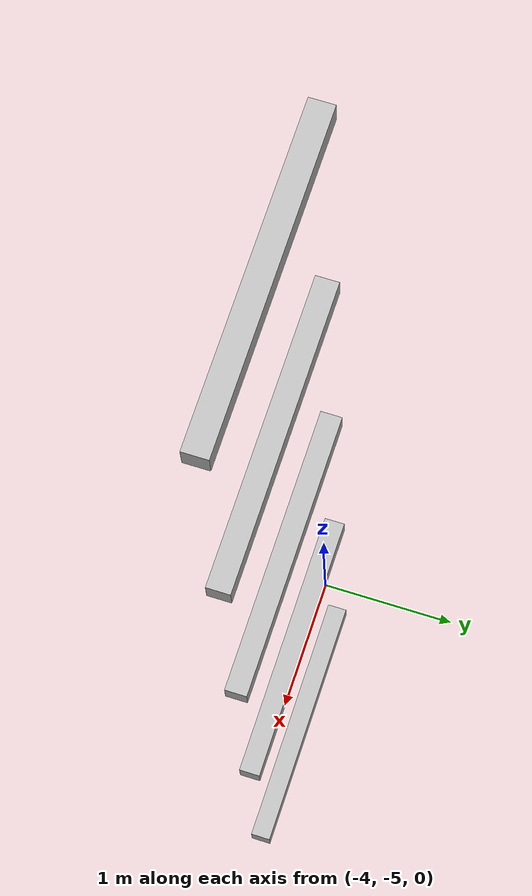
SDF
<sdf version="1.7">
 <world name="default">
  <model name="orthogonal_747_2.000.15_TS">
   <static>1</static>
   <link name="x_link_0_0_1">
    <inertial>
     <mass>1</mass>
     <inertia>
      <ixx>0.166667</ixx>
      <ixy>0</ixy>
      <ixz>0</ixz>
      <iyy>0.166667</iyy>
      <iyz>0</iyz>
      <izz>0.166667</izz>
     </inertia>
    </inertial>
    <pose>3.225 0 1.075 0 -0 0</pose>
    <visual name="visual_0">
     <laser_retro>22</laser_retro>
     <geometry><box><size>2 1e-06 0.15</size></box></geometry>
     <material>
      <script><name>Gazebo/Grey</name><uri>file://media/materials/scripts/gazebo.material</uri></script>
      <shader type="pixel"><normal_map>__default__</normal_map></shader>
      <ambient>0.678 0.498 0.659 1</ambient>
      <diffuse>0.7 0.7 0.7 1</diffuse>
      <specular>0.01 0.01 0.01 1</specular>
      <emissive>0 0 0 1</emissive>
     </material>
     <pose>0 -0.075 0 0 -0 0</pose>
     <transparency>1</transparency>
    </visual>
    <visual name="visual_1">
     <laser_retro>23</laser_retro>
     <geometry><box><size>2 1e-06 0.15</size></box></geometry>
     <material>
      <script><name>Gazebo/Grey</name><uri>file://media/materials/scripts/gazebo.material</uri></script>
      <shader type="pixel"><normal_map>__default__</normal_map></shader>
      <ambient>0.447 0.624 0.812 1</ambient>
      <diffuse>0.7 0.7 0.7 1</diffuse>
      <specular>0.01 0.01 0.01 1</specular>
      <emissive>0 0 0 1</emissive>
     </material>
     <pose>0 0.075 0 0 -0 0</pose>
     <transparency>1</transparency>
    </visual>
    <visual name="visual_2">
     <laser_retro>24</laser_retro>
     <geometry><box><size>2 0.15 1e-06</size></box></geometry>
     <material>
      <script><name>Gazebo/Grey</name><uri>file://media/materials/scripts/gazebo.material</uri></script>
      <shader type="pixel"><normal_map>__default__</normal_map></shader>
      <ambient>0.988 0.686 0.243 1</ambient>
      <diffuse>0.7 0.7 0.7 1</diffuse>
      <specular>0.01 0.01 0.01 1</specular>
      <emissive>0 0 0 1</emissive>
     </material>
     <pose>0 0 -0.075 0 -0 0</pose>
     <transparency>1</transparency>
    </visual>
    <visual name="visual_3">
     <laser_retro>25</laser_retro>
     <geometry><box><size>1e-06 0.15 0.15</size></box></geometry>
     <material>
      <script><name>Gazebo/Grey</name><uri>file://media/materials/scripts/gazebo.material</uri></script>
      <shader type="pixel"><normal_map>__default__</normal_map></shader>
      <ambient>0.988 0.914 0.31 1</ambient>
      <diffuse>0.7 0.7 0.7 1</diffuse>
      <specular>0.01 0.01 0.01 1</specular>
      <emissive>0 0 0 1</emissive>
     </material>
     <pose>1 0 0 0 -0 0</pose>
     <transparency>1</transparency>
    </visual>
    <visual name="visual_4">
     <laser_retro>26</laser_retro>
     <geometry><box><size>2 0.15 1e-06</size></box></geometry>
     <material>
      <script><name>Gazebo/Grey</name><uri>file://media/materials/scripts/gazebo.material</uri></script>
      <shader type="pixel"><normal_map>__default__</normal_map></shader>
      <ambient>0.937 0.161 0.161 1</ambient>
      <diffuse>0.7 0.7 0.7 1</diffuse>
      <specular>0.01 0.01 0.01 1</specular>
      <emissive>0 0 0 1</emissive>
     </material>
     <pose>0 0 0.075 0 -0 0</pose>
     <transparency>1</transparency>
    </visual>
    <visual name="visual_5">
     <laser_retro>27</laser_retro>
     <geometry><box><size>1e-06 0.15 0.15</size></box></geometry>
     <material>
      <script><name>Gazebo/Grey</name><uri>file://media/materials/scripts/gazebo.material</uri></script>
      <shader type="pixel"><normal_map>__default__</normal_map></shader>
      <ambient>0.541 0.886 0.204 1</ambient>
      <diffuse>0.7 0.7 0.7 1</diffuse>
      <specular>0.01 0.01 0.01 1</specular>
      <emissive>0 0 0 1</emissive>
     </material>
     <pose>-1 0 0 0 -0 0</pose>
     <transparency>1</transparency>
    </visual>
    <visual name="visual_texture">
     <geometry><box><size>1.9998 0.149985 0.149985</size></box></geometry>
     <material>
      <script>
       <uri>model://BASE_MODELS/simple_block_v2_textured/materials/scripts</uri>
       <uri>model://BASE_MODELS/simple_block_v2_textured/materials/textures</uri>
       <name>metal</name>
      </script>
     </material>
     <laser_retro>28</laser_retro>
    </visual>
    <collision name="collision">
     <geometry><box><size>2 0.15 0.15</size></box></geometry>
     <surface>
      <friction>
       <ode><mu>1</mu><mu2>1</mu2><fdir1>0 0 0</fdir1><slip1>0</slip1><slip2>0</slip2></ode>
       <torsional>
        <coefficient>1</coefficient>
        <patch_radius>0</patch_radius>
        <surface_radius>0</surface_radius>
        <use_patch_radius>1</use_patch_radius>
        <ode><slip>0</slip></ode>
       </torsional>
      </friction>
      <bounce><restitution_coefficient>0</restitution_coefficient><threshold>1e+06</threshold></bounce>
      <contact>
       <collide_without_contact>0</collide_without_contact>
       <collide_without_contact_bitmask>1</collide_without_contact_bitmask>
       <collide_bitmask>1</collide_bitmask>
       <ode>
        <soft_cfm>0</soft_cfm>
        <soft_erp>0.2</soft_erp>
        <kp>1e+13</kp>
        <kd>1</kd>
        <max_vel>0.01</max_vel>
        <min_depth>0</min_depth>
       </ode>
       <bullet>
        <split_impulse>1</split_impulse>
        <split_impulse_penetration_threshold>-0.01</split_impulse_penetration_threshold>
        <soft_cfm>0</soft_cfm>
        <soft_erp>0.2</soft_erp>
        <kp>1e+13</kp>
        <kd>1</kd>
       </bullet>
      </contact>
     </surface>
    </collision>
   </link>
   <link name="x_link_1_0_1">
    <inertial>
     <mass>1</mass>
     <inertia>
      <ixx>0.166667</ixx>
      <ixy>0</ixy>
      <ixz>0</ixz>
      <iyy>0.166667</iyy>
      <iyz>0</iyz>
      <izz>0.166667</izz>
     </inertia>
    </inertial>
    <pose>3.225 0 3.225 0 -0 0</pose>
    <visual name="visual_0">
     <laser_retro>778</laser_retro>
     <geometry><box><size>2 1e-06 0.15</size></box></geometry>
     <material>
      <script><name>Gazebo/Grey</name><uri>file://media/materials/scripts/gazebo.material</uri></script>
      <shader type="pixel"><normal_map>__default__</normal_map></shader>
      <ambient>0.678 0.498 0.659 1</ambient>
      <diffuse>0.7 0.7 0.7 1</diffuse>
      <specular>0.01 0.01 0.01 1</specular>
      <emissive>0 0 0 1</emissive>
     </material>
     <pose>0 -0.075 0 0 -0 0</pose>
     <transparency>1</transparency>
    </visual>
    <visual name="visual_1">
     <laser_retro>779</laser_retro>
     <geometry><box><size>2 1e-06 0.15</size></box></geometry>
     <material>
      <script><name>Gazebo/Grey</name><uri>file://media/materials/scripts/gazebo.material</uri></script>
      <shader type="pixel"><normal_map>__default__</normal_map></shader>
      <ambient>0.447 0.624 0.812 1</ambient>
      <diffuse>0.7 0.7 0.7 1</diffuse>
      <specular>0.01 0.01 0.01 1</specular>
      <emissive>0 0 0 1</emissive>
     </material>
     <pose>0 0.075 0 0 -0 0</pose>
     <transparency>1</transparency>
    </visual>
    <visual name="visual_2">
     <laser_retro>780</laser_retro>
     <geometry><box><size>2 0.15 1e-06</size></box></geometry>
     <material>
      <script><name>Gazebo/Grey</name><uri>file://media/materials/scripts/gazebo.material</uri></script>
      <shader type="pixel"><normal_map>__default__</normal_map></shader>
      <ambient>0.988 0.686 0.243 1</ambient>
      <diffuse>0.7 0.7 0.7 1</diffuse>
      <specular>0.01 0.01 0.01 1</specular>
      <emissive>0 0 0 1</emissive>
     </material>
     <pose>0 0 -0.075 0 -0 0</pose>
     <transparency>1</transparency>
    </visual>
    <visual name="visual_3">
     <laser_retro>781</laser_retro>
     <geometry><box><size>1e-06 0.15 0.15</size></box></geometry>
     <material>
      <script><name>Gazebo/Grey</name><uri>file://media/materials/scripts/gazebo.material</uri></script>
      <shader type="pixel"><normal_map>__default__</normal_map></shader>
      <ambient>0.988 0.914 0.31 1</ambient>
      <diffuse>0.7 0.7 0.7 1</diffuse>
      <specular>0.01 0.01 0.01 1</specular>
      <emissive>0 0 0 1</emissive>
     </material>
     <pose>1 0 0 0 -0 0</pose>
     <transparency>1</transparency>
    </visual>
    <visual name="visual_4">
     <laser_retro>782</laser_retro>
     <geometry><box><size>2 0.15 1e-06</size></box></geometry>
     <material>
      <script><name>Gazebo/Grey</name><uri>file://media/materials/scripts/gazebo.material</uri></script>
      <shader type="pixel"><normal_map>__default__</normal_map></shader>
      <ambient>0.937 0.161 0.161 1</ambient>
      <diffuse>0.7 0.7 0.7 1</diffuse>
      <specular>0.01 0.01 0.01 1</specular>
      <emissive>0 0 0 1</emissive>
     </material>
     <pose>0 0 0.075 0 -0 0</pose>
     <transparency>1</transparency>
    </visual>
    <visual name="visual_5">
     <laser_retro>783</laser_retro>
     <geometry><box><size>1e-06 0.15 0.15</size></box></geometry>
     <material>
      <script><name>Gazebo/Grey</name><uri>file://media/materials/scripts/gazebo.material</uri></script>
      <shader type="pixel"><normal_map>__default__</normal_map></shader>
      <ambient>0.541 0.886 0.204 1</ambient>
      <diffuse>0.7 0.7 0.7 1</diffuse>
      <specular>0.01 0.01 0.01 1</specular>
      <emissive>0 0 0 1</emissive>
     </material>
     <pose>-1 0 0 0 -0 0</pose>
     <transparency>1</transparency>
    </visual>
    <visual name="visual_texture">
     <geometry><box><size>1.9998 0.149985 0.149985</size></box></geometry>
     <material>
      <script>
       <uri>model://BASE_MODELS/simple_block_v2_textured/materials/scripts</uri>
       <uri>model://BASE_MODELS/simple_block_v2_textured/materials/textures</uri>
       <name>metal</name>
      </script>
     </material>
     <laser_retro>784</laser_retro>
    </visual>
    <collision name="collision">
     <geometry><box><size>2 0.15 0.15</size></box></geometry>
     <surface>
      <friction>
       <ode><mu>1</mu><mu2>1</mu2><fdir1>0 0 0</fdir1><slip1>0</slip1><slip2>0</slip2></ode>
       <torsional>
        <coefficient>1</coefficient>
        <patch_radius>0</patch_radius>
        <surface_radius>0</surface_radius>
        <use_patch_radius>1</use_patch_radius>
        <ode><slip>0</slip></ode>
       </torsional>
      </friction>
      <bounce><restitution_coefficient>0</restitution_coefficient><threshold>1e+06</threshold></bounce>
      <contact>
       <collide_without_contact>0</collide_without_contact>
       <collide_without_contact_bitmask>1</collide_without_contact_bitmask>
       <collide_bitmask>1</collide_bitmask>
       <ode>
        <soft_cfm>0</soft_cfm>
        <soft_erp>0.2</soft_erp>
        <kp>1e+13</kp>
        <kd>1</kd>
        <max_vel>0.01</max_vel>
        <min_depth>0</min_depth>
       </ode>
       <bullet>
        <split_impulse>1</split_impulse>
        <split_impulse_penetration_threshold>-0.01</split_impulse_penetration_threshold>
        <soft_cfm>0</soft_cfm>
        <soft_erp>0.2</soft_erp>
        <kp>1e+13</kp>
        <kd>1</kd>
       </bullet>
      </contact>
     </surface>
    </collision>
   </link>
   <link name="x_link_2_0_1">
    <inertial>
     <mass>1</mass>
     <inertia>
      <ixx>0.166667</ixx>
      <ixy>0</ixy>
      <ixz>0</ixz>
      <iyy>0.166667</iyy>
      <iyz>0</iyz>
      <izz>0.166667</izz>
     </inertia>
    </inertial>
    <pose>3.225 0 5.375 0 -0 0</pose>
    <visual name="visual_0">
     <laser_retro>1681</laser_retro>
     <geometry><box><size>2 1e-06 0.15</size></box></geometry>
     <material>
      <script><name>Gazebo/Grey</name><uri>file://media/materials/scripts/gazebo.material</uri></script>
      <shader type="pixel"><normal_map>__default__</normal_map></shader>
      <ambient>0.678 0.498 0.659 1</ambient>
      <diffuse>0.7 0.7 0.7 1</diffuse>
      <specular>0.01 0.01 0.01 1</specular>
      <emissive>0 0 0 1</emissive>
     </material>
     <pose>0 -0.075 0 0 -0 0</pose>
     <transparency>1</transparency>
    </visual>
    <visual name="visual_1">
     <laser_retro>1682</laser_retro>
     <geometry><box><size>2 1e-06 0.15</size></box></geometry>
     <material>
      <script><name>Gazebo/Grey</name><uri>file://media/materials/scripts/gazebo.material</uri></script>
      <shader type="pixel"><normal_map>__default__</normal_map></shader>
      <ambient>0.447 0.624 0.812 1</ambient>
      <diffuse>0.7 0.7 0.7 1</diffuse>
      <specular>0.01 0.01 0.01 1</specular>
      <emissive>0 0 0 1</emissive>
     </material>
     <pose>0 0.075 0 0 -0 0</pose>
     <transparency>1</transparency>
    </visual>
    <visual name="visual_2">
     <laser_retro>1683</laser_retro>
     <geometry><box><size>2 0.15 1e-06</size></box></geometry>
     <material>
      <script><name>Gazebo/Grey</name><uri>file://media/materials/scripts/gazebo.material</uri></script>
      <shader type="pixel"><normal_map>__default__</normal_map></shader>
      <ambient>0.988 0.686 0.243 1</ambient>
      <diffuse>0.7 0.7 0.7 1</diffuse>
      <specular>0.01 0.01 0.01 1</specular>
      <emissive>0 0 0 1</emissive>
     </material>
     <pose>0 0 -0.075 0 -0 0</pose>
     <transparency>1</transparency>
    </visual>
    <visual name="visual_3">
     <laser_retro>1684</laser_retro>
     <geometry><box><size>1e-06 0.15 0.15</size></box></geometry>
     <material>
      <script><name>Gazebo/Grey</name><uri>file://media/materials/scripts/gazebo.material</uri></script>
      <shader type="pixel"><normal_map>__default__</normal_map></shader>
      <ambient>0.988 0.914 0.31 1</ambient>
      <diffuse>0.7 0.7 0.7 1</diffuse>
      <specular>0.01 0.01 0.01 1</specular>
      <emissive>0 0 0 1</emissive>
     </material>
     <pose>1 0 0 0 -0 0</pose>
     <transparency>1</transparency>
    </visual>
    <visual name="visual_4">
     <laser_retro>1685</laser_retro>
     <geometry><box><size>2 0.15 1e-06</size></box></geometry>
     <material>
      <script><name>Gazebo/Grey</name><uri>file://media/materials/scripts/gazebo.material</uri></script>
      <shader type="pixel"><normal_map>__default__</normal_map></shader>
      <ambient>0.937 0.161 0.161 1</ambient>
      <diffuse>0.7 0.7 0.7 1</diffuse>
      <specular>0.01 0.01 0.01 1</specular>
      <emissive>0 0 0 1</emissive>
     </material>
     <pose>0 0 0.075 0 -0 0</pose>
     <transparency>1</transparency>
    </visual>
    <visual name="visual_5">
     <laser_retro>1686</laser_retro>
     <geometry><box><size>1e-06 0.15 0.15</size></box></geometry>
     <material>
      <script><name>Gazebo/Grey</name><uri>file://media/materials/scripts/gazebo.material</uri></script>
      <shader type="pixel"><normal_map>__default__</normal_map></shader>
      <ambient>0.541 0.886 0.204 1</ambient>
      <diffuse>0.7 0.7 0.7 1</diffuse>
      <specular>0.01 0.01 0.01 1</specular>
      <emissive>0 0 0 1</emissive>
     </material>
     <pose>-1 0 0 0 -0 0</pose>
     <transparency>1</transparency>
    </visual>
    <visual name="visual_texture">
     <geometry><box><size>1.9998 0.149985 0.149985</size></box></geometry>
     <material>
      <script>
       <uri>model://BASE_MODELS/simple_block_v2_textured/materials/scripts</uri>
       <uri>model://BASE_MODELS/simple_block_v2_textured/materials/textures</uri>
       <name>metal</name>
      </script>
     </material>
     <laser_retro>1687</laser_retro>
    </visual>
    <collision name="collision">
     <geometry><box><size>2 0.15 0.15</size></box></geometry>
     <surface>
      <friction>
       <ode><mu>1</mu><mu2>1</mu2><fdir1>0 0 0</fdir1><slip1>0</slip1><slip2>0</slip2></ode>
       <torsional>
        <coefficient>1</coefficient>
        <patch_radius>0</patch_radius>
        <surface_radius>0</surface_radius>
        <use_patch_radius>1</use_patch_radius>
        <ode><slip>0</slip></ode>
       </torsional>
      </friction>
      <bounce><restitution_coefficient>0</restitution_coefficient><threshold>1e+06</threshold></bounce>
      <contact>
       <collide_without_contact>0</collide_without_contact>
       <collide_without_contact_bitmask>1</collide_without_contact_bitmask>
       <collide_bitmask>1</collide_bitmask>
       <ode>
        <soft_cfm>0</soft_cfm>
        <soft_erp>0.2</soft_erp>
        <kp>1e+13</kp>
        <kd>1</kd>
        <max_vel>0.01</max_vel>
        <min_depth>0</min_depth>
       </ode>
       <bullet>
        <split_impulse>1</split_impulse>
        <split_impulse_penetration_threshold>-0.01</split_impulse_penetration_threshold>
        <soft_cfm>0</soft_cfm>
        <soft_erp>0.2</soft_erp>
        <kp>1e+13</kp>
        <kd>1</kd>
       </bullet>
      </contact>
     </surface>
    </collision>
   </link>
   <link name="x_link_3_0_1">
    <inertial>
     <mass>1</mass>
     <inertia>
      <ixx>0.166667</ixx>
      <ixy>0</ixy>
      <ixz>0</ixz>
      <iyy>0.166667</iyy>
      <iyz>0</iyz>
      <izz>0.166667</izz>
     </inertia>
    </inertial>
    <pose>3.225 0 7.525 0 -0 0</pose>
    <visual name="visual_0">
     <laser_retro>2584</laser_retro>
     <geometry><box><size>2 1e-06 0.15</size></box></geometry>
     <material>
      <script><name>Gazebo/Grey</name><uri>file://media/materials/scripts/gazebo.material</uri></script>
      <shader type="pixel"><normal_map>__default__</normal_map></shader>
      <ambient>0.678 0.498 0.659 1</ambient>
      <diffuse>0.7 0.7 0.7 1</diffuse>
      <specular>0.01 0.01 0.01 1</specular>
      <emissive>0 0 0 1</emissive>
     </material>
     <pose>0 -0.075 0 0 -0 0</pose>
     <transparency>1</transparency>
    </visual>
    <visual name="visual_1">
     <laser_retro>2585</laser_retro>
     <geometry><box><size>2 1e-06 0.15</size></box></geometry>
     <material>
      <script><name>Gazebo/Grey</name><uri>file://media/materials/scripts/gazebo.material</uri></script>
      <shader type="pixel"><normal_map>__default__</normal_map></shader>
      <ambient>0.447 0.624 0.812 1</ambient>
      <diffuse>0.7 0.7 0.7 1</diffuse>
      <specular>0.01 0.01 0.01 1</specular>
      <emissive>0 0 0 1</emissive>
     </material>
     <pose>0 0.075 0 0 -0 0</pose>
     <transparency>1</transparency>
    </visual>
    <visual name="visual_2">
     <laser_retro>2586</laser_retro>
     <geometry><box><size>2 0.15 1e-06</size></box></geometry>
     <material>
      <script><name>Gazebo/Grey</name><uri>file://media/materials/scripts/gazebo.material</uri></script>
      <shader type="pixel"><normal_map>__default__</normal_map></shader>
      <ambient>0.988 0.686 0.243 1</ambient>
      <diffuse>0.7 0.7 0.7 1</diffuse>
      <specular>0.01 0.01 0.01 1</specular>
      <emissive>0 0 0 1</emissive>
     </material>
     <pose>0 0 -0.075 0 -0 0</pose>
     <transparency>1</transparency>
    </visual>
    <visual name="visual_3">
     <laser_retro>2587</laser_retro>
     <geometry><box><size>1e-06 0.15 0.15</size></box></geometry>
     <material>
      <script><name>Gazebo/Grey</name><uri>file://media/materials/scripts/gazebo.material</uri></script>
      <shader type="pixel"><normal_map>__default__</normal_map></shader>
      <ambient>0.988 0.914 0.31 1</ambient>
      <diffuse>0.7 0.7 0.7 1</diffuse>
      <specular>0.01 0.01 0.01 1</specular>
      <emissive>0 0 0 1</emissive>
     </material>
     <pose>1 0 0 0 -0 0</pose>
     <transparency>1</transparency>
    </visual>
    <visual name="visual_4">
     <laser_retro>2588</laser_retro>
     <geometry><box><size>2 0.15 1e-06</size></box></geometry>
     <material>
      <script><name>Gazebo/Grey</name><uri>file://media/materials/scripts/gazebo.material</uri></script>
      <shader type="pixel"><normal_map>__default__</normal_map></shader>
      <ambient>0.937 0.161 0.161 1</ambient>
      <diffuse>0.7 0.7 0.7 1</diffuse>
      <specular>0.01 0.01 0.01 1</specular>
      <emissive>0 0 0 1</emissive>
     </material>
     <pose>0 0 0.075 0 -0 0</pose>
     <transparency>1</transparency>
    </visual>
    <visual name="visual_5">
     <laser_retro>2589</laser_retro>
     <geometry><box><size>1e-06 0.15 0.15</size></box></geometry>
     <material>
      <script><name>Gazebo/Grey</name><uri>file://media/materials/scripts/gazebo.material</uri></script>
      <shader type="pixel"><normal_map>__default__</normal_map></shader>
      <ambient>0.541 0.886 0.204 1</ambient>
      <diffuse>0.7 0.7 0.7 1</diffuse>
      <specular>0.01 0.01 0.01 1</specular>
      <emissive>0 0 0 1</emissive>
     </material>
     <pose>-1 0 0 0 -0 0</pose>
     <transparency>1</transparency>
    </visual>
    <visual name="visual_texture">
     <geometry><box><size>1.9998 0.149985 0.149985</size></box></geometry>
     <material>
      <script>
       <uri>model://BASE_MODELS/simple_block_v2_textured/materials/scripts</uri>
       <uri>model://BASE_MODELS/simple_block_v2_textured/materials/textures</uri>
       <name>metal</name>
      </script>
     </material>
     <laser_retro>2590</laser_retro>
    </visual>
    <collision name="collision">
     <geometry><box><size>2 0.15 0.15</size></box></geometry>
     <surface>
      <friction>
       <ode><mu>1</mu><mu2>1</mu2><fdir1>0 0 0</fdir1><slip1>0</slip1><slip2>0</slip2></ode>
       <torsional>
        <coefficient>1</coefficient>
        <patch_radius>0</patch_radius>
        <surface_radius>0</surface_radius>
        <use_patch_radius>1</use_patch_radius>
        <ode><slip>0</slip></ode>
       </torsional>
      </friction>
      <bounce><restitution_coefficient>0</restitution_coefficient><threshold>1e+06</threshold></bounce>
      <contact>
       <collide_without_contact>0</collide_without_contact>
       <collide_without_contact_bitmask>1</collide_without_contact_bitmask>
       <collide_bitmask>1</collide_bitmask>
       <ode>
        <soft_cfm>0</soft_cfm>
        <soft_erp>0.2</soft_erp>
        <kp>1e+13</kp>
        <kd>1</kd>
        <max_vel>0.01</max_vel>
        <min_depth>0</min_depth>
       </ode>
       <bullet>
        <split_impulse>1</split_impulse>
        <split_impulse_penetration_threshold>-0.01</split_impulse_penetration_threshold>
        <soft_cfm>0</soft_cfm>
        <soft_erp>0.2</soft_erp>
        <kp>1e+13</kp>
        <kd>1</kd>
       </bullet>
      </contact>
     </surface>
    </collision>
   </link>
   <link name="x_link_4_0_1">
    <inertial>
     <mass>1</mass>
     <inertia>
      <ixx>0.166667</ixx>
      <ixy>0</ixy>
      <ixz>0</ixz>
      <iyy>0.166667</iyy>
      <iyz>0</iyz>
      <izz>0.166667</izz>
     </inertia>
    </inertial>
    <pose>3.225 0 9.675 0 -0 0</pose>
    <visual name="visual_0">
     <laser_retro>3487</laser_retro>
     <geometry><box><size>2 1e-06 0.15</size></box></geometry>
     <material>
      <script><name>Gazebo/Grey</name><uri>file://media/materials/scripts/gazebo.material</uri></script>
      <shader type="pixel"><normal_map>__default__</normal_map></shader>
      <ambient>0.678 0.498 0.659 1</ambient>
      <diffuse>0.7 0.7 0.7 1</diffuse>
      <specular>0.01 0.01 0.01 1</specular>
      <emissive>0 0 0 1</emissive>
     </material>
     <pose>0 -0.075 0 0 -0 0</pose>
     <transparency>1</transparency>
    </visual>
    <visual name="visual_1">
     <laser_retro>3488</laser_retro>
     <geometry><box><size>2 1e-06 0.15</size></box></geometry>
     <material>
      <script><name>Gazebo/Grey</name><uri>file://media/materials/scripts/gazebo.material</uri></script>
      <shader type="pixel"><normal_map>__default__</normal_map></shader>
      <ambient>0.447 0.624 0.812 1</ambient>
      <diffuse>0.7 0.7 0.7 1</diffuse>
      <specular>0.01 0.01 0.01 1</specular>
      <emissive>0 0 0 1</emissive>
     </material>
     <pose>0 0.075 0 0 -0 0</pose>
     <transparency>1</transparency>
    </visual>
    <visual name="visual_2">
     <laser_retro>3489</laser_retro>
     <geometry><box><size>2 0.15 1e-06</size></box></geometry>
     <material>
      <script><name>Gazebo/Grey</name><uri>file://media/materials/scripts/gazebo.material</uri></script>
      <shader type="pixel"><normal_map>__default__</normal_map></shader>
      <ambient>0.988 0.686 0.243 1</ambient>
      <diffuse>0.7 0.7 0.7 1</diffuse>
      <specular>0.01 0.01 0.01 1</specular>
      <emissive>0 0 0 1</emissive>
     </material>
     <pose>0 0 -0.075 0 -0 0</pose>
     <transparency>1</transparency>
    </visual>
    <visual name="visual_3">
     <laser_retro>3490</laser_retro>
     <geometry><box><size>1e-06 0.15 0.15</size></box></geometry>
     <material>
      <script><name>Gazebo/Grey</name><uri>file://media/materials/scripts/gazebo.material</uri></script>
      <shader type="pixel"><normal_map>__default__</normal_map></shader>
      <ambient>0.988 0.914 0.31 1</ambient>
      <diffuse>0.7 0.7 0.7 1</diffuse>
      <specular>0.01 0.01 0.01 1</specular>
      <emissive>0 0 0 1</emissive>
     </material>
     <pose>1 0 0 0 -0 0</pose>
     <transparency>1</transparency>
    </visual>
    <visual name="visual_4">
     <laser_retro>3491</laser_retro>
     <geometry><box><size>2 0.15 1e-06</size></box></geometry>
     <material>
      <script><name>Gazebo/Grey</name><uri>file://media/materials/scripts/gazebo.material</uri></script>
      <shader type="pixel"><normal_map>__default__</normal_map></shader>
      <ambient>0.937 0.161 0.161 1</ambient>
      <diffuse>0.7 0.7 0.7 1</diffuse>
      <specular>0.01 0.01 0.01 1</specular>
      <emissive>0 0 0 1</emissive>
     </material>
     <pose>0 0 0.075 0 -0 0</pose>
     <transparency>1</transparency>
    </visual>
    <visual name="visual_5">
     <laser_retro>3492</laser_retro>
     <geometry><box><size>1e-06 0.15 0.15</size></box></geometry>
     <material>
      <script><name>Gazebo/Grey</name><uri>file://media/materials/scripts/gazebo.material</uri></script>
      <shader type="pixel"><normal_map>__default__</normal_map></shader>
      <ambient>0.541 0.886 0.204 1</ambient>
      <diffuse>0.7 0.7 0.7 1</diffuse>
      <specular>0.01 0.01 0.01 1</specular>
      <emissive>0 0 0 1</emissive>
     </material>
     <pose>-1 0 0 0 -0 0</pose>
     <transparency>1</transparency>
    </visual>
    <visual name="visual_texture">
     <geometry><box><size>1.9998 0.149985 0.149985</size></box></geometry>
     <material>
      <script>
       <uri>model://BASE_MODELS/simple_block_v2_textured/materials/scripts</uri>
       <uri>model://BASE_MODELS/simple_block_v2_textured/materials/textures</uri>
       <name>metal</name>
      </script>
     </material>
     <laser_retro>3493</laser_retro>
    </visual>
    <collision name="collision">
     <geometry><box><size>2 0.15 0.15</size></box></geometry>
     <surface>
      <friction>
       <ode><mu>1</mu><mu2>1</mu2><fdir1>0 0 0</fdir1><slip1>0</slip1><slip2>0</slip2></ode>
       <torsional>
        <coefficient>1</coefficient>
        <patch_radius>0</patch_radius>
        <surface_radius>0</surface_radius>
        <use_patch_radius>1</use_patch_radius>
        <ode><slip>0</slip></ode>
       </torsional>
      </friction>
      <bounce><restitution_coefficient>0</restitution_coefficient><threshold>1e+06</threshold></bounce>
      <contact>
       <collide_without_contact>0</collide_without_contact>
       <collide_without_contact_bitmask>1</collide_without_contact_bitmask>
       <collide_bitmask>1</collide_bitmask>
       <ode>
        <soft_cfm>0</soft_cfm>
        <soft_erp>0.2</soft_erp>
        <kp>1e+13</kp>
        <kd>1</kd>
        <max_vel>0.01</max_vel>
        <min_depth>0</min_depth>
       </ode>
       <bullet>
        <split_impulse>1</split_impulse>
        <split_impulse_penetration_threshold>-0.01</split_impulse_penetration_threshold>
        <soft_cfm>0</soft_cfm>
        <soft_erp>0.2</soft_erp>
        <kp>1e+13</kp>
        <kd>1</kd>
       </bullet>
      </contact>
     </surface>
    </collision>
   </link>
   <pose>-6.47624 -5 -2.5 0 -0 0</pose>
  </model>
 </world>
</sdf>
